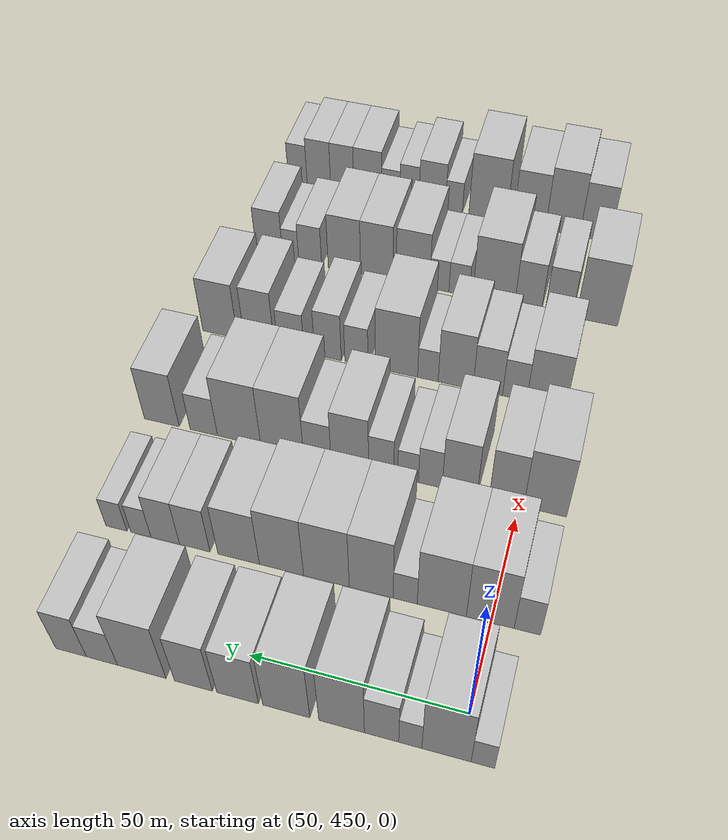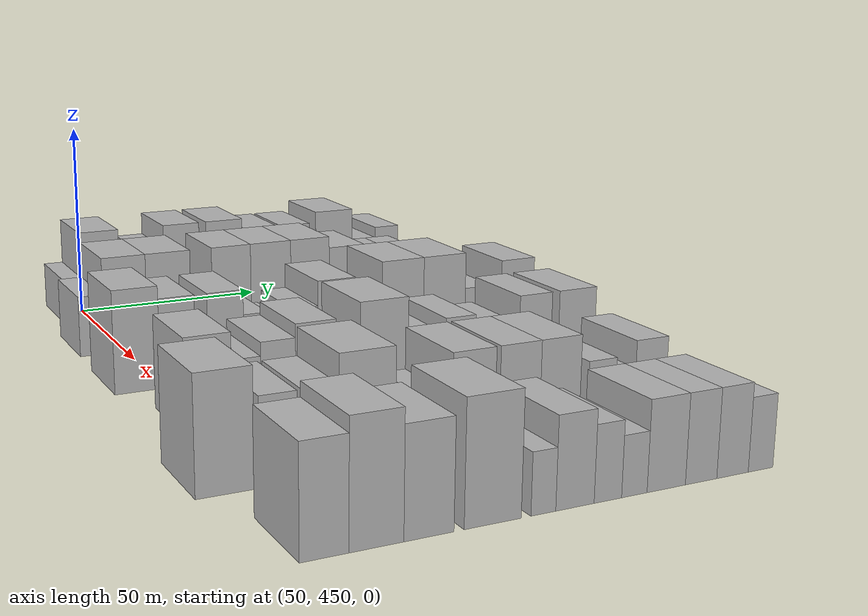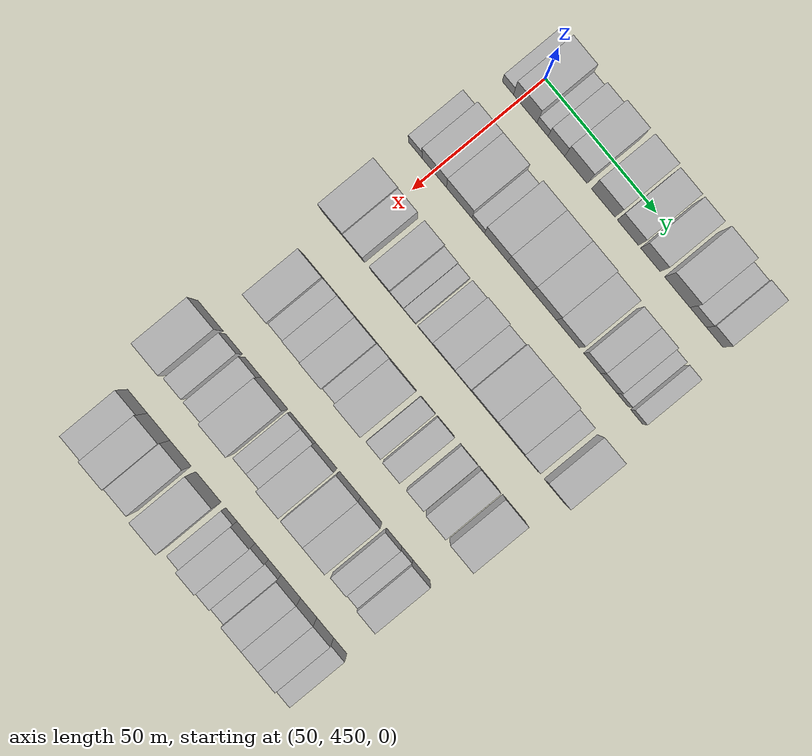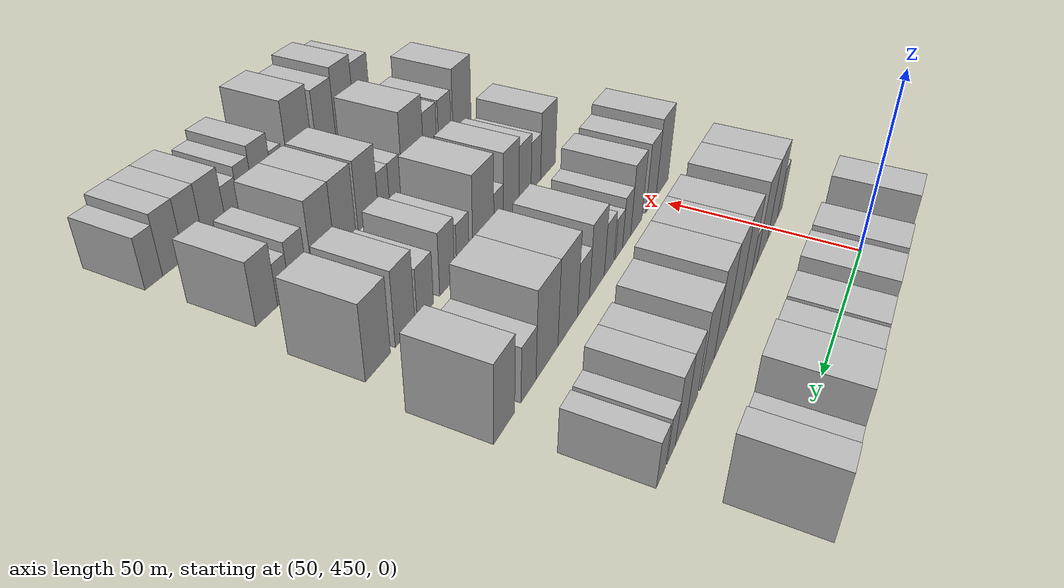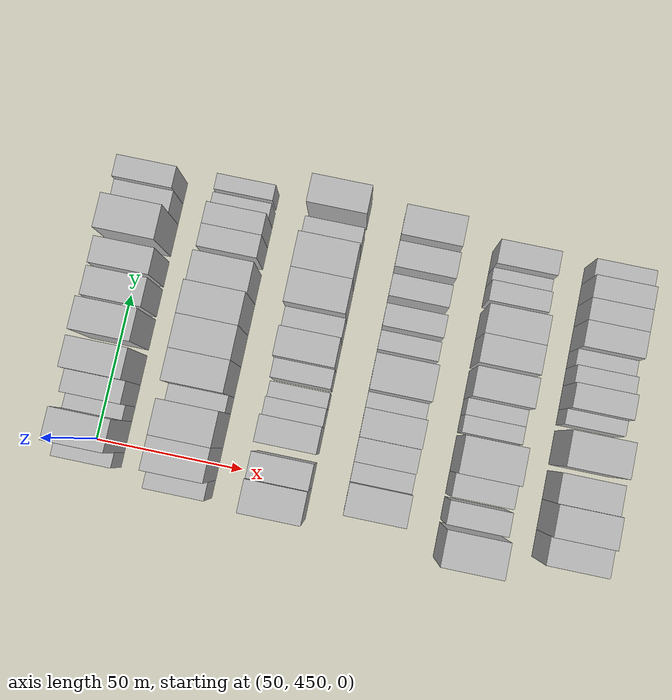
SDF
<sdf version="1.6">
 <world name="default">
  <model name="building_104">
   <static>1</static>
   <pose>50.0000 444.9965 0 0.000000 0.000000 0.000000</pose>
   <link name="link">
    <pose>0 0 6.00 0 0 0</pose>
    <collision name="collision"><geometry><box><size>20.0000 5.0309 12.0000</size></box></geometry></collision>
    <visual name="visual">
     <cast_shadows>0</cast_shadows>
     <geometry><box><size>20.0000 5.0309 12.0000</size></box></geometry>
     <material>
      <script>
       <uri>model://HANNAS_wall/materials/scripts</uri>
       <uri>model://HANNAS_wall/materials/textures</uri>
       <name>vrc/HANNAS_wall</name>
      </script>
     </material>
    </visual>
   </link>
  </model>
  <model name="building_105">
   <static>1</static>
   <pose>50.0000 452.8143 0 0.000000 0.000000 0.000000</pose>
   <link name="link">
    <pose>0 0 12.00 0 0 0</pose>
    <collision name="collision"><geometry><box><size>20.0000 10.6047 24.0000</size></box></geometry></collision>
    <visual name="visual">
     <cast_shadows>0</cast_shadows>
     <geometry><box><size>20.0000 10.6047 24.0000</size></box></geometry>
     <material>
      <script>
       <uri>model://HANNAS_wall/materials/scripts</uri>
       <uri>model://HANNAS_wall/materials/textures</uri>
       <name>vrc/HANNAS_wall</name>
      </script>
     </material>
    </visual>
   </link>
  </model>
  <model name="building_106">
   <static>1</static>
   <pose>50.0000 460.6272 0 0.000000 0.000000 0.000000</pose>
   <link name="link">
    <pose>0 0 6.00 0 0 0</pose>
    <collision name="collision"><geometry><box><size>20.0000 5.0212 12.0000</size></box></geometry></collision>
    <visual name="visual">
     <cast_shadows>0</cast_shadows>
     <geometry><box><size>20.0000 5.0212 12.0000</size></box></geometry>
     <material>
      <script>
       <uri>model://HANNAS_wall/materials/scripts</uri>
       <uri>model://HANNAS_wall/materials/textures</uri>
       <name>vrc/HANNAS_wall</name>
      </script>
     </material>
    </visual>
   </link>
  </model>
  <model name="building_107">
   <static>1</static>
   <pose>50.0000 466.9019 0 0.000000 0.000000 0.000000</pose>
   <link name="link">
    <pose>0 0 9.00 0 0 0</pose>
    <collision name="collision"><geometry><box><size>20.0000 7.5283 18.0000</size></box></geometry></collision>
    <visual name="visual">
     <cast_shadows>0</cast_shadows>
     <geometry><box><size>20.0000 7.5283 18.0000</size></box></geometry>
     <material>
      <script>
       <uri>model://HANNAS_wall/materials/scripts</uri>
       <uri>model://HANNAS_wall/materials/textures</uri>
       <name>vrc/HANNAS_wall</name>
      </script>
     </material>
    </visual>
   </link>
  </model>
  <model name="building_108">
   <static>1</static>
   <pose>50.0000 475.7332 0 0.000000 0.000000 0.000000</pose>
   <link name="link">
    <pose>0 0 12.00 0 0 0</pose>
    <collision name="collision"><geometry><box><size>20.0000 10.1344 24.0000</size></box></geometry></collision>
    <visual name="visual">
     <cast_shadows>0</cast_shadows>
     <geometry><box><size>20.0000 10.1344 24.0000</size></box></geometry>
     <material>
      <script>
       <uri>model://HANNAS_wall/materials/scripts</uri>
       <uri>model://HANNAS_wall/materials/textures</uri>
       <name>vrc/HANNAS_wall</name>
      </script>
     </material>
    </visual>
   </link>
  </model>
  <model name="building_109">
   <static>1</static>
   <pose>50.0000 488.1139 0 0.000000 0.000000 0.000000</pose>
   <link name="link">
    <pose>0 0 12.00 0 0 0</pose>
    <collision name="collision"><geometry><box><size>20.0000 10.6270 24.0000</size></box></geometry></collision>
    <visual name="visual">
     <cast_shadows>0</cast_shadows>
     <geometry><box><size>20.0000 10.6270 24.0000</size></box></geometry>
     <material>
      <script>
       <uri>model://HANNAS_wall/materials/scripts</uri>
       <uri>model://HANNAS_wall/materials/textures</uri>
       <name>vrc/HANNAS_wall</name>
      </script>
     </material>
    </visual>
   </link>
  </model>
  <model name="building_110">
   <static>1</static>
   <pose>50.0000 499.2135 0 0.000000 0.000000 0.000000</pose>
   <link name="link">
    <pose>0 0 10.50 0 0 0</pose>
    <collision name="collision"><geometry><box><size>20.0000 9.5722 21.0000</size></box></geometry></collision>
    <visual name="visual">
     <cast_shadows>0</cast_shadows>
     <geometry><box><size>20.0000 9.5722 21.0000</size></box></geometry>
     <material>
      <script>
       <uri>model://HANNAS_wall/materials/scripts</uri>
       <uri>model://HANNAS_wall/materials/textures</uri>
       <name>vrc/HANNAS_wall</name>
      </script>
     </material>
    </visual>
   </link>
  </model>
  <model name="building_111">
   <static>1</static>
   <pose>50.0000 509.4123 0 0.000000 0.000000 0.000000</pose>
   <link name="link">
    <pose>0 0 10.50 0 0 0</pose>
    <collision name="collision"><geometry><box><size>20.0000 8.8254 21.0000</size></box></geometry></collision>
    <visual name="visual">
     <cast_shadows>0</cast_shadows>
     <geometry><box><size>20.0000 8.8254 21.0000</size></box></geometry>
     <material>
      <script>
       <uri>model://HANNAS_wall/materials/scripts</uri>
       <uri>model://HANNAS_wall/materials/textures</uri>
       <name>vrc/HANNAS_wall</name>
      </script>
     </material>
    </visual>
   </link>
  </model>
  <model name="building_112">
   <static>1</static>
   <pose>50.0000 521.5541 0 0.000000 0.000000 0.000000</pose>
   <link name="link">
    <pose>0 0 12.00 0 0 0</pose>
    <collision name="collision"><geometry><box><size>20.0000 11.4580 24.0000</size></box></geometry></collision>
    <visual name="visual">
     <cast_shadows>0</cast_shadows>
     <geometry><box><size>20.0000 11.4580 24.0000</size></box></geometry>
     <material>
      <script>
       <uri>model://HANNAS_wall/materials/scripts</uri>
       <uri>model://HANNAS_wall/materials/textures</uri>
       <name>vrc/HANNAS_wall</name>
      </script>
     </material>
    </visual>
   </link>
  </model>
  <model name="building_113">
   <static>1</static>
   <pose>50.0000 531.0181 0 0.000000 0.000000 0.000000</pose>
   <link name="link">
    <pose>0 0 7.50 0 0 0</pose>
    <collision name="collision"><geometry><box><size>20.0000 7.4699 15.0000</size></box></geometry></collision>
    <visual name="visual">
     <cast_shadows>0</cast_shadows>
     <geometry><box><size>20.0000 7.4699 15.0000</size></box></geometry>
     <material>
      <script>
       <uri>model://HANNAS_wall/materials/scripts</uri>
       <uri>model://HANNAS_wall/materials/textures</uri>
       <name>vrc/HANNAS_wall</name>
      </script>
     </material>
    </visual>
   </link>
  </model>
  <model name="building_114">
   <static>1</static>
   <pose>50.0000 538.4522 0 0.000000 0.000000 0.000000</pose>
   <link name="link">
    <pose>0 0 9.00 0 0 0</pose>
    <collision name="collision"><geometry><box><size>20.0000 7.3984 18.0000</size></box></geometry></collision>
    <visual name="visual">
     <cast_shadows>0</cast_shadows>
     <geometry><box><size>20.0000 7.3984 18.0000</size></box></geometry>
     <material>
      <script>
       <uri>model://HANNAS_wall/materials/scripts</uri>
       <uri>model://HANNAS_wall/materials/textures</uri>
       <name>vrc/HANNAS_wall</name>
      </script>
     </material>
    </visual>
   </link>
  </model>
  <model name="building_224">
   <static>1</static>
   <pose>82.0000 441.7404 0 0.000000 0.000000 0.000000</pose>
   <link name="link">
    <pose>0 0 7.50 0 0 0</pose>
    <collision name="collision"><geometry><box><size>20.0000 6.0666 15.0000</size></box></geometry></collision>
    <visual name="visual">
     <cast_shadows>0</cast_shadows>
     <geometry><box><size>20.0000 6.0666 15.0000</size></box></geometry>
     <material>
      <script>
       <uri>model://HANNAS_wall/materials/scripts</uri>
       <uri>model://HANNAS_wall/materials/textures</uri>
       <name>vrc/HANNAS_wall</name>
      </script>
     </material>
    </visual>
   </link>
  </model>
  <model name="building_225">
   <static>1</static>
   <pose>82.0000 450.2878 0 0.000000 0.000000 0.000000</pose>
   <link name="link">
    <pose>0 0 12.00 0 0 0</pose>
    <collision name="collision"><geometry><box><size>20.0000 11.0281 24.0000</size></box></geometry></collision>
    <visual name="visual">
     <cast_shadows>0</cast_shadows>
     <geometry><box><size>20.0000 11.0281 24.0000</size></box></geometry>
     <material>
      <script>
       <uri>model://HANNAS_wall/materials/scripts</uri>
       <uri>model://HANNAS_wall/materials/textures</uri>
       <name>vrc/HANNAS_wall</name>
      </script>
     </material>
    </visual>
   </link>
  </model>
  <model name="building_226">
   <static>1</static>
   <pose>82.0000 461.5555 0 0.000000 0.000000 0.000000</pose>
   <link name="link">
    <pose>0 0 12.00 0 0 0</pose>
    <collision name="collision"><geometry><box><size>20.0000 11.5074 24.0000</size></box></geometry></collision>
    <visual name="visual">
     <cast_shadows>0</cast_shadows>
     <geometry><box><size>20.0000 11.5074 24.0000</size></box></geometry>
     <material>
      <script>
       <uri>model://HANNAS_wall/materials/scripts</uri>
       <uri>model://HANNAS_wall/materials/textures</uri>
       <name>vrc/HANNAS_wall</name>
      </script>
     </material>
    </visual>
   </link>
  </model>
  <model name="building_227">
   <static>1</static>
   <pose>82.0000 470.1527 0 0.000000 0.000000 0.000000</pose>
   <link name="link">
    <pose>0 0 6.00 0 0 0</pose>
    <collision name="collision"><geometry><box><size>20.0000 5.6869 12.0000</size></box></geometry></collision>
    <visual name="visual">
     <cast_shadows>0</cast_shadows>
     <geometry><box><size>20.0000 5.6869 12.0000</size></box></geometry>
     <material>
      <script>
       <uri>model://HANNAS_wall/materials/scripts</uri>
       <uri>model://HANNAS_wall/materials/textures</uri>
       <name>vrc/HANNAS_wall</name>
      </script>
     </material>
    </visual>
   </link>
  </model>
  <model name="building_228">
   <static>1</static>
   <pose>82.0000 478.2468 0 0.000000 0.000000 0.000000</pose>
   <link name="link">
    <pose>0 0 12.00 0 0 0</pose>
    <collision name="collision"><geometry><box><size>20.0000 10.5013 24.0000</size></box></geometry></collision>
    <visual name="visual">
     <cast_shadows>0</cast_shadows>
     <geometry><box><size>20.0000 10.5013 24.0000</size></box></geometry>
     <material>
      <script>
       <uri>model://HANNAS_wall/materials/scripts</uri>
       <uri>model://HANNAS_wall/materials/textures</uri>
       <name>vrc/HANNAS_wall</name>
      </script>
     </material>
    </visual>
   </link>
  </model>
  <model name="building_229">
   <static>1</static>
   <pose>82.0000 489.0395 0 0.000000 0.000000 0.000000</pose>
   <link name="link">
    <pose>0 0 12.00 0 0 0</pose>
    <collision name="collision"><geometry><box><size>20.0000 11.0842 24.0000</size></box></geometry></collision>
    <visual name="visual">
     <cast_shadows>0</cast_shadows>
     <geometry><box><size>20.0000 11.0842 24.0000</size></box></geometry>
     <material>
      <script>
       <uri>model://HANNAS_wall/materials/scripts</uri>
       <uri>model://HANNAS_wall/materials/textures</uri>
       <name>vrc/HANNAS_wall</name>
      </script>
     </material>
    </visual>
   </link>
  </model>
  <model name="building_230">
   <static>1</static>
   <pose>82.0000 500.0204 0 0.000000 0.000000 0.000000</pose>
   <link name="link">
    <pose>0 0 12.00 0 0 0</pose>
    <collision name="collision"><geometry><box><size>20.0000 10.8776 24.0000</size></box></geometry></collision>
    <visual name="visual">
     <cast_shadows>0</cast_shadows>
     <geometry><box><size>20.0000 10.8776 24.0000</size></box></geometry>
     <material>
      <script>
       <uri>model://HANNAS_wall/materials/scripts</uri>
       <uri>model://HANNAS_wall/materials/textures</uri>
       <name>vrc/HANNAS_wall</name>
      </script>
     </material>
    </visual>
   </link>
  </model>
  <model name="building_231">
   <static>1</static>
   <pose>82.0000 510.6318 0 0.000000 0.000000 0.000000</pose>
   <link name="link">
    <pose>0 0 10.50 0 0 0</pose>
    <collision name="collision"><geometry><box><size>20.0000 10.3451 21.0000</size></box></geometry></collision>
    <visual name="visual">
     <cast_shadows>0</cast_shadows>
     <geometry><box><size>20.0000 10.3451 21.0000</size></box></geometry>
     <material>
      <script>
       <uri>model://HANNAS_wall/materials/scripts</uri>
       <uri>model://HANNAS_wall/materials/textures</uri>
       <name>vrc/HANNAS_wall</name>
      </script>
     </material>
    </visual>
   </link>
  </model>
  <model name="building_232">
   <static>1</static>
   <pose>82.0000 521.6520 0 0.000000 0.000000 0.000000</pose>
   <link name="link">
    <pose>0 0 9.00 0 0 0</pose>
    <collision name="collision"><geometry><box><size>20.0000 7.6953 18.0000</size></box></geometry></collision>
    <visual name="visual">
     <cast_shadows>0</cast_shadows>
     <geometry><box><size>20.0000 7.6953 18.0000</size></box></geometry>
     <material>
      <script>
       <uri>model://HANNAS_wall/materials/scripts</uri>
       <uri>model://HANNAS_wall/materials/textures</uri>
       <name>vrc/HANNAS_wall</name>
      </script>
     </material>
    </visual>
   </link>
  </model>
  <model name="building_233">
   <static>1</static>
   <pose>82.0000 529.1618 0 0.000000 0.000000 0.000000</pose>
   <link name="link">
    <pose>0 0 9.00 0 0 0</pose>
    <collision name="collision"><geometry><box><size>20.0000 7.3242 18.0000</size></box></geometry></collision>
    <visual name="visual">
     <cast_shadows>0</cast_shadows>
     <geometry><box><size>20.0000 7.3242 18.0000</size></box></geometry>
     <material>
      <script>
       <uri>model://HANNAS_wall/materials/scripts</uri>
       <uri>model://HANNAS_wall/materials/textures</uri>
       <name>vrc/HANNAS_wall</name>
      </script>
     </material>
    </visual>
   </link>
  </model>
  <model name="building_234">
   <static>1</static>
   <pose>82.0000 535.4018 0 0.000000 0.000000 0.000000</pose>
   <link name="link">
    <pose>0 0 6.00 0 0 0</pose>
    <collision name="collision"><geometry><box><size>20.0000 5.1557 12.0000</size></box></geometry></collision>
    <visual name="visual">
     <cast_shadows>0</cast_shadows>
     <geometry><box><size>20.0000 5.1557 12.0000</size></box></geometry>
     <material>
      <script>
       <uri>model://HANNAS_wall/materials/scripts</uri>
       <uri>model://HANNAS_wall/materials/textures</uri>
       <name>vrc/HANNAS_wall</name>
      </script>
     </material>
    </visual>
   </link>
  </model>
  <model name="building_235">
   <static>1</static>
   <pose>82.0000 541.7049 0 0.000000 0.000000 0.000000</pose>
   <link name="link">
    <pose>0 0 6.00 0 0 0</pose>
    <collision name="collision"><geometry><box><size>20.0000 5.4505 12.0000</size></box></geometry></collision>
    <visual name="visual">
     <cast_shadows>0</cast_shadows>
     <geometry><box><size>20.0000 5.4505 12.0000</size></box></geometry>
     <material>
      <script>
       <uri>model://HANNAS_wall/materials/scripts</uri>
       <uri>model://HANNAS_wall/materials/textures</uri>
       <name>vrc/HANNAS_wall</name>
      </script>
     </material>
    </visual>
   </link>
  </model>
  <model name="building_340">
   <static>1</static>
   <pose>114.0000 443.5470 0 0.000000 0.000000 0.000000</pose>
   <link name="link">
    <pose>0 0 12.00 0 0 0</pose>
    <collision name="collision"><geometry><box><size>20.0000 10.5785 24.0000</size></box></geometry></collision>
    <visual name="visual">
     <cast_shadows>0</cast_shadows>
     <geometry><box><size>20.0000 10.5785 24.0000</size></box></geometry>
     <material>
      <script>
       <uri>model://HANNAS_wall/materials/scripts</uri>
       <uri>model://HANNAS_wall/materials/textures</uri>
       <name>vrc/HANNAS_wall</name>
      </script>
     </material>
    </visual>
   </link>
  </model>
  <model name="building_341">
   <static>1</static>
   <pose>114.0000 453.1126 0 0.000000 0.000000 0.000000</pose>
   <link name="link">
    <pose>0 0 10.50 0 0 0</pose>
    <collision name="collision"><geometry><box><size>20.0000 8.5527 21.0000</size></box></geometry></collision>
    <visual name="visual">
     <cast_shadows>0</cast_shadows>
     <geometry><box><size>20.0000 8.5527 21.0000</size></box></geometry>
     <material>
      <script>
       <uri>model://HANNAS_wall/materials/scripts</uri>
       <uri>model://HANNAS_wall/materials/textures</uri>
       <name>vrc/HANNAS_wall</name>
      </script>
     </material>
    </visual>
   </link>
  </model>
  <model name="building_342">
   <static>1</static>
   <pose>114.0000 464.7864 0 0.000000 0.000000 0.000000</pose>
   <link name="link">
    <pose>0 0 10.50 0 0 0</pose>
    <collision name="collision"><geometry><box><size>20.0000 8.7950 21.0000</size></box></geometry></collision>
    <visual name="visual">
     <cast_shadows>0</cast_shadows>
     <geometry><box><size>20.0000 8.7950 21.0000</size></box></geometry>
     <material>
      <script>
       <uri>model://HANNAS_wall/materials/scripts</uri>
       <uri>model://HANNAS_wall/materials/textures</uri>
       <name>vrc/HANNAS_wall</name>
      </script>
     </material>
    </visual>
   </link>
  </model>
  <model name="building_343">
   <static>1</static>
   <pose>114.0000 472.1928 0 0.000000 0.000000 0.000000</pose>
   <link name="link">
    <pose>0 0 7.50 0 0 0</pose>
    <collision name="collision"><geometry><box><size>20.0000 6.0178 15.0000</size></box></geometry></collision>
    <visual name="visual">
     <cast_shadows>0</cast_shadows>
     <geometry><box><size>20.0000 6.0178 15.0000</size></box></geometry>
     <material>
      <script>
       <uri>model://HANNAS_wall/materials/scripts</uri>
       <uri>model://HANNAS_wall/materials/textures</uri>
       <name>vrc/HANNAS_wall</name>
      </script>
     </material>
    </visual>
   </link>
  </model>
  <model name="building_344">
   <static>1</static>
   <pose>114.0000 477.8475 0 0.000000 0.000000 0.000000</pose>
   <link name="link">
    <pose>0 0 6.00 0 0 0</pose>
    <collision name="collision"><geometry><box><size>20.0000 5.2915 12.0000</size></box></geometry></collision>
    <visual name="visual">
     <cast_shadows>0</cast_shadows>
     <geometry><box><size>20.0000 5.2915 12.0000</size></box></geometry>
     <material>
      <script>
       <uri>model://HANNAS_wall/materials/scripts</uri>
       <uri>model://HANNAS_wall/materials/textures</uri>
       <name>vrc/HANNAS_wall</name>
      </script>
     </material>
    </visual>
   </link>
  </model>
  <model name="building_345">
   <static>1</static>
   <pose>114.0000 484.7353 0 0.000000 0.000000 0.000000</pose>
   <link name="link">
    <pose>0 0 7.50 0 0 0</pose>
    <collision name="collision"><geometry><box><size>20.0000 6.4841 15.0000</size></box></geometry></collision>
    <visual name="visual">
     <cast_shadows>0</cast_shadows>
     <geometry><box><size>20.0000 6.4841 15.0000</size></box></geometry>
     <material>
      <script>
       <uri>model://HANNAS_wall/materials/scripts</uri>
       <uri>model://HANNAS_wall/materials/textures</uri>
       <name>vrc/HANNAS_wall</name>
      </script>
     </material>
    </visual>
   </link>
  </model>
  <model name="building_346">
   <static>1</static>
   <pose>114.0000 492.8597 0 0.000000 0.000000 0.000000</pose>
   <link name="link">
    <pose>0 0 10.50 0 0 0</pose>
    <collision name="collision"><geometry><box><size>20.0000 9.7646 21.0000</size></box></geometry></collision>
    <visual name="visual">
     <cast_shadows>0</cast_shadows>
     <geometry><box><size>20.0000 9.7646 21.0000</size></box></geometry>
     <material>
      <script>
       <uri>model://HANNAS_wall/materials/scripts</uri>
       <uri>model://HANNAS_wall/materials/textures</uri>
       <name>vrc/HANNAS_wall</name>
      </script>
     </material>
    </visual>
   </link>
  </model>
  <model name="building_347">
   <static>1</static>
   <pose>114.0000 501.3580 0 0.000000 0.000000 0.000000</pose>
   <link name="link">
    <pose>0 0 7.50 0 0 0</pose>
    <collision name="collision"><geometry><box><size>20.0000 7.2322 15.0000</size></box></geometry></collision>
    <visual name="visual">
     <cast_shadows>0</cast_shadows>
     <geometry><box><size>20.0000 7.2322 15.0000</size></box></geometry>
     <material>
      <script>
       <uri>model://HANNAS_wall/materials/scripts</uri>
       <uri>model://HANNAS_wall/materials/textures</uri>
       <name>vrc/HANNAS_wall</name>
      </script>
     </material>
    </visual>
   </link>
  </model>
  <model name="building_348">
   <static>1</static>
   <pose>114.0000 510.6494 0 0.000000 0.000000 0.000000</pose>
   <link name="link">
    <pose>0 0 12.00 0 0 0</pose>
    <collision name="collision"><geometry><box><size>20.0000 11.3506 24.0000</size></box></geometry></collision>
    <visual name="visual">
     <cast_shadows>0</cast_shadows>
     <geometry><box><size>20.0000 11.3506 24.0000</size></box></geometry>
     <material>
      <script>
       <uri>model://HANNAS_wall/materials/scripts</uri>
       <uri>model://HANNAS_wall/materials/textures</uri>
       <name>vrc/HANNAS_wall</name>
      </script>
     </material>
    </visual>
   </link>
  </model>
  <model name="building_349">
   <static>1</static>
   <pose>114.0000 522.1672 0 0.000000 0.000000 0.000000</pose>
   <link name="link">
    <pose>0 0 12.00 0 0 0</pose>
    <collision name="collision"><geometry><box><size>20.0000 11.6849 24.0000</size></box></geometry></collision>
    <visual name="visual">
     <cast_shadows>0</cast_shadows>
     <geometry><box><size>20.0000 11.6849 24.0000</size></box></geometry>
     <material>
      <script>
       <uri>model://HANNAS_wall/materials/scripts</uri>
       <uri>model://HANNAS_wall/materials/textures</uri>
       <name>vrc/HANNAS_wall</name>
      </script>
     </material>
    </visual>
   </link>
  </model>
  <model name="building_350">
   <static>1</static>
   <pose>114.0000 531.7428 0 0.000000 0.000000 0.000000</pose>
   <link name="link">
    <pose>0 0 7.50 0 0 0</pose>
    <collision name="collision"><geometry><box><size>20.0000 7.4663 15.0000</size></box></geometry></collision>
    <visual name="visual">
     <cast_shadows>0</cast_shadows>
     <geometry><box><size>20.0000 7.4663 15.0000</size></box></geometry>
     <material>
      <script>
       <uri>model://HANNAS_wall/materials/scripts</uri>
       <uri>model://HANNAS_wall/materials/textures</uri>
       <name>vrc/HANNAS_wall</name>
      </script>
     </material>
    </visual>
   </link>
  </model>
  <model name="building_351">
   <static>1</static>
   <pose>114.0000 543.2558 0 0.000000 0.000000 0.000000</pose>
   <link name="link">
    <pose>0 0 10.50 0 0 0</pose>
    <collision name="collision"><geometry><box><size>20.0000 9.5597 21.0000</size></box></geometry></collision>
    <visual name="visual">
     <cast_shadows>0</cast_shadows>
     <geometry><box><size>20.0000 9.5597 21.0000</size></box></geometry>
     <material>
      <script>
       <uri>model://HANNAS_wall/materials/scripts</uri>
       <uri>model://HANNAS_wall/materials/textures</uri>
       <name>vrc/HANNAS_wall</name>
      </script>
     </material>
    </visual>
   </link>
  </model>
  <model name="building_449">
   <static>1</static>
   <pose>146.0000 449.0660 0 0.000000 0.000000 0.000000</pose>
   <link name="link">
    <pose>0 0 10.50 0 0 0</pose>
    <collision name="collision"><geometry><box><size>20.0000 10.3460 21.0000</size></box></geometry></collision>
    <visual name="visual">
     <cast_shadows>0</cast_shadows>
     <geometry><box><size>20.0000 10.3460 21.0000</size></box></geometry>
     <material>
      <script>
       <uri>model://HANNAS_wall/materials/scripts</uri>
       <uri>model://HANNAS_wall/materials/textures</uri>
       <name>vrc/HANNAS_wall</name>
      </script>
     </material>
    </visual>
   </link>
  </model>
  <model name="building_450">
   <static>1</static>
   <pose>146.0000 457.4619 0 0.000000 0.000000 0.000000</pose>
   <link name="link">
    <pose>0 0 7.50 0 0 0</pose>
    <collision name="collision"><geometry><box><size>20.0000 6.4459 15.0000</size></box></geometry></collision>
    <visual name="visual">
     <cast_shadows>0</cast_shadows>
     <geometry><box><size>20.0000 6.4459 15.0000</size></box></geometry>
     <material>
      <script>
       <uri>model://HANNAS_wall/materials/scripts</uri>
       <uri>model://HANNAS_wall/materials/textures</uri>
       <name>vrc/HANNAS_wall</name>
      </script>
     </material>
    </visual>
   </link>
  </model>
  <model name="building_451">
   <static>1</static>
   <pose>146.0000 464.6374 0 0.000000 0.000000 0.000000</pose>
   <link name="link">
    <pose>0 0 9.00 0 0 0</pose>
    <collision name="collision"><geometry><box><size>20.0000 7.9051 18.0000</size></box></geometry></collision>
    <visual name="visual">
     <cast_shadows>0</cast_shadows>
     <geometry><box><size>20.0000 7.9051 18.0000</size></box></geometry>
     <material>
      <script>
       <uri>model://HANNAS_wall/materials/scripts</uri>
       <uri>model://HANNAS_wall/materials/textures</uri>
       <name>vrc/HANNAS_wall</name>
      </script>
     </material>
    </visual>
   </link>
  </model>
  <model name="building_452">
   <static>1</static>
   <pose>146.0000 473.2822 0 0.000000 0.000000 0.000000</pose>
   <link name="link">
    <pose>0 0 10.50 0 0 0</pose>
    <collision name="collision"><geometry><box><size>20.0000 9.3845 21.0000</size></box></geometry></collision>
    <visual name="visual">
     <cast_shadows>0</cast_shadows>
     <geometry><box><size>20.0000 9.3845 21.0000</size></box></geometry>
     <material>
      <script>
       <uri>model://HANNAS_wall/materials/scripts</uri>
       <uri>model://HANNAS_wall/materials/textures</uri>
       <name>vrc/HANNAS_wall</name>
      </script>
     </material>
    </visual>
   </link>
  </model>
  <model name="building_453">
   <static>1</static>
   <pose>146.0000 480.7875 0 0.000000 0.000000 0.000000</pose>
   <link name="link">
    <pose>0 0 6.00 0 0 0</pose>
    <collision name="collision"><geometry><box><size>20.0000 5.6261 12.0000</size></box></geometry></collision>
    <visual name="visual">
     <cast_shadows>0</cast_shadows>
     <geometry><box><size>20.0000 5.6261 12.0000</size></box></geometry>
     <material>
      <script>
       <uri>model://HANNAS_wall/materials/scripts</uri>
       <uri>model://HANNAS_wall/materials/textures</uri>
       <name>vrc/HANNAS_wall</name>
      </script>
     </material>
    </visual>
   </link>
  </model>
  <model name="building_454">
   <static>1</static>
   <pose>146.0000 489.4441 0 0.000000 0.000000 0.000000</pose>
   <link name="link">
    <pose>0 0 12.00 0 0 0</pose>
    <collision name="collision"><geometry><box><size>20.0000 11.6869 24.0000</size></box></geometry></collision>
    <visual name="visual">
     <cast_shadows>0</cast_shadows>
     <geometry><box><size>20.0000 11.6869 24.0000</size></box></geometry>
     <material>
      <script>
       <uri>model://HANNAS_wall/materials/scripts</uri>
       <uri>model://HANNAS_wall/materials/textures</uri>
       <name>vrc/HANNAS_wall</name>
      </script>
     </material>
    </visual>
   </link>
  </model>
  <model name="building_455">
   <static>1</static>
   <pose>146.0000 500.5053 0 0.000000 0.000000 0.000000</pose>
   <link name="link">
    <pose>0 0 7.50 0 0 0</pose>
    <collision name="collision"><geometry><box><size>20.0000 6.4356 15.0000</size></box></geometry></collision>
    <visual name="visual">
     <cast_shadows>0</cast_shadows>
     <geometry><box><size>20.0000 6.4356 15.0000</size></box></geometry>
     <material>
      <script>
       <uri>model://HANNAS_wall/materials/scripts</uri>
       <uri>model://HANNAS_wall/materials/textures</uri>
       <name>vrc/HANNAS_wall</name>
      </script>
     </material>
    </visual>
   </link>
  </model>
  <model name="building_456">
   <static>1</static>
   <pose>146.0000 508.4625 0 0.000000 0.000000 0.000000</pose>
   <link name="link">
    <pose>0 0 9.00 0 0 0</pose>
    <collision name="collision"><geometry><box><size>20.0000 7.4787 18.0000</size></box></geometry></collision>
    <visual name="visual">
     <cast_shadows>0</cast_shadows>
     <geometry><box><size>20.0000 7.4787 18.0000</size></box></geometry>
     <material>
      <script>
       <uri>model://HANNAS_wall/materials/scripts</uri>
       <uri>model://HANNAS_wall/materials/textures</uri>
       <name>vrc/HANNAS_wall</name>
      </script>
     </material>
    </visual>
   </link>
  </model>
  <model name="building_457">
   <static>1</static>
   <pose>146.0000 518.9450 0 0.000000 0.000000 0.000000</pose>
   <link name="link">
    <pose>0 0 7.50 0 0 0</pose>
    <collision name="collision"><geometry><box><size>20.0000 7.4863 15.0000</size></box></geometry></collision>
    <visual name="visual">
     <cast_shadows>0</cast_shadows>
     <geometry><box><size>20.0000 7.4863 15.0000</size></box></geometry>
     <material>
      <script>
       <uri>model://HANNAS_wall/materials/scripts</uri>
       <uri>model://HANNAS_wall/materials/textures</uri>
       <name>vrc/HANNAS_wall</name>
      </script>
     </material>
    </visual>
   </link>
  </model>
  <model name="building_458">
   <static>1</static>
   <pose>146.0000 527.9827 0 0.000000 0.000000 0.000000</pose>
   <link name="link">
    <pose>0 0 10.50 0 0 0</pose>
    <collision name="collision"><geometry><box><size>20.0000 8.5893 21.0000</size></box></geometry></collision>
    <visual name="visual">
     <cast_shadows>0</cast_shadows>
     <geometry><box><size>20.0000 8.5893 21.0000</size></box></geometry>
     <material>
      <script>
       <uri>model://HANNAS_wall/materials/scripts</uri>
       <uri>model://HANNAS_wall/materials/textures</uri>
       <name>vrc/HANNAS_wall</name>
      </script>
     </material>
    </visual>
   </link>
  </model>
  <model name="building_459">
   <static>1</static>
   <pose>146.0000 539.3162 0 0.000000 0.000000 0.000000</pose>
   <link name="link">
    <pose>0 0 10.50 0 0 0</pose>
    <collision name="collision"><geometry><box><size>20.0000 10.0777 21.0000</size></box></geometry></collision>
    <visual name="visual">
     <cast_shadows>0</cast_shadows>
     <geometry><box><size>20.0000 10.0777 21.0000</size></box></geometry>
     <material>
      <script>
       <uri>model://HANNAS_wall/materials/scripts</uri>
       <uri>model://HANNAS_wall/materials/textures</uri>
       <name>vrc/HANNAS_wall</name>
      </script>
     </material>
    </visual>
   </link>
  </model>
  <model name="building_574">
   <static>1</static>
   <pose>178.0000 440.7787 0 0.000000 0.000000 0.000000</pose>
   <link name="link">
    <pose>0 0 12.00 0 0 0</pose>
    <collision name="collision"><geometry><box><size>20.0000 11.5380 24.0000</size></box></geometry></collision>
    <visual name="visual">
     <cast_shadows>0</cast_shadows>
     <geometry><box><size>20.0000 11.5380 24.0000</size></box></geometry>
     <material>
      <script>
       <uri>model://HANNAS_wall/materials/scripts</uri>
       <uri>model://HANNAS_wall/materials/textures</uri>
       <name>vrc/HANNAS_wall</name>
      </script>
     </material>
    </visual>
   </link>
  </model>
  <model name="building_575">
   <static>1</static>
   <pose>178.0000 451.3759 0 0.000000 0.000000 0.000000</pose>
   <link name="link">
    <pose>0 0 9.00 0 0 0</pose>
    <collision name="collision"><geometry><box><size>20.0000 7.6566 18.0000</size></box></geometry></collision>
    <visual name="visual">
     <cast_shadows>0</cast_shadows>
     <geometry><box><size>20.0000 7.6566 18.0000</size></box></geometry>
     <material>
      <script>
       <uri>model://HANNAS_wall/materials/scripts</uri>
       <uri>model://HANNAS_wall/materials/textures</uri>
       <name>vrc/HANNAS_wall</name>
      </script>
     </material>
    </visual>
   </link>
  </model>
  <model name="building_576">
   <static>1</static>
   <pose>178.0000 460.0198 0 0.000000 0.000000 0.000000</pose>
   <link name="link">
    <pose>0 0 9.00 0 0 0</pose>
    <collision name="collision"><geometry><box><size>20.0000 7.6311 18.0000</size></box></geometry></collision>
    <visual name="visual">
     <cast_shadows>0</cast_shadows>
     <geometry><box><size>20.0000 7.6311 18.0000</size></box></geometry>
     <material>
      <script>
       <uri>model://HANNAS_wall/materials/scripts</uri>
       <uri>model://HANNAS_wall/materials/textures</uri>
       <name>vrc/HANNAS_wall</name>
      </script>
     </material>
    </visual>
   </link>
  </model>
  <model name="building_577">
   <static>1</static>
   <pose>178.0000 469.8260 0 0.000000 0.000000 0.000000</pose>
   <link name="link">
    <pose>0 0 12.00 0 0 0</pose>
    <collision name="collision"><geometry><box><size>20.0000 11.9813 24.0000</size></box></geometry></collision>
    <visual name="visual">
     <cast_shadows>0</cast_shadows>
     <geometry><box><size>20.0000 11.9813 24.0000</size></box></geometry>
     <material>
      <script>
       <uri>model://HANNAS_wall/materials/scripts</uri>
       <uri>model://HANNAS_wall/materials/textures</uri>
       <name>vrc/HANNAS_wall</name>
      </script>
     </material>
    </visual>
   </link>
  </model>
  <model name="building_578">
   <static>1</static>
   <pose>178.0000 479.7552 0 0.000000 0.000000 0.000000</pose>
   <link name="link">
    <pose>0 0 6.00 0 0 0</pose>
    <collision name="collision"><geometry><box><size>20.0000 5.8770 12.0000</size></box></geometry></collision>
    <visual name="visual">
     <cast_shadows>0</cast_shadows>
     <geometry><box><size>20.0000 5.8770 12.0000</size></box></geometry>
     <material>
      <script>
       <uri>model://HANNAS_wall/materials/scripts</uri>
       <uri>model://HANNAS_wall/materials/textures</uri>
       <name>vrc/HANNAS_wall</name>
      </script>
     </material>
    </visual>
   </link>
  </model>
  <model name="building_579">
   <static>1</static>
   <pose>178.0000 485.4727 0 0.000000 0.000000 0.000000</pose>
   <link name="link">
    <pose>0 0 6.00 0 0 0</pose>
    <collision name="collision"><geometry><box><size>20.0000 5.5581 12.0000</size></box></geometry></collision>
    <visual name="visual">
     <cast_shadows>0</cast_shadows>
     <geometry><box><size>20.0000 5.5581 12.0000</size></box></geometry>
     <material>
      <script>
       <uri>model://HANNAS_wall/materials/scripts</uri>
       <uri>model://HANNAS_wall/materials/textures</uri>
       <name>vrc/HANNAS_wall</name>
      </script>
     </material>
    </visual>
   </link>
  </model>
  <model name="building_580">
   <static>1</static>
   <pose>178.0000 493.1603 0 0.000000 0.000000 0.000000</pose>
   <link name="link">
    <pose>0 0 10.50 0 0 0</pose>
    <collision name="collision"><geometry><box><size>20.0000 9.8171 21.0000</size></box></geometry></collision>
    <visual name="visual">
     <cast_shadows>0</cast_shadows>
     <geometry><box><size>20.0000 9.8171 21.0000</size></box></geometry>
     <material>
      <script>
       <uri>model://HANNAS_wall/materials/scripts</uri>
       <uri>model://HANNAS_wall/materials/textures</uri>
       <name>vrc/HANNAS_wall</name>
      </script>
     </material>
    </visual>
   </link>
  </model>
  <model name="building_581">
   <static>1</static>
   <pose>178.0000 503.8461 0 0.000000 0.000000 0.000000</pose>
   <link name="link">
    <pose>0 0 10.50 0 0 0</pose>
    <collision name="collision"><geometry><box><size>20.0000 9.5545 21.0000</size></box></geometry></collision>
    <visual name="visual">
     <cast_shadows>0</cast_shadows>
     <geometry><box><size>20.0000 9.5545 21.0000</size></box></geometry>
     <material>
      <script>
       <uri>model://HANNAS_wall/materials/scripts</uri>
       <uri>model://HANNAS_wall/materials/textures</uri>
       <name>vrc/HANNAS_wall</name>
      </script>
     </material>
    </visual>
   </link>
  </model>
  <model name="building_582">
   <static>1</static>
   <pose>178.0000 513.4506 0 0.000000 0.000000 0.000000</pose>
   <link name="link">
    <pose>0 0 10.50 0 0 0</pose>
    <collision name="collision"><geometry><box><size>20.0000 9.6545 21.0000</size></box></geometry></collision>
    <visual name="visual">
     <cast_shadows>0</cast_shadows>
     <geometry><box><size>20.0000 9.6545 21.0000</size></box></geometry>
     <material>
      <script>
       <uri>model://HANNAS_wall/materials/scripts</uri>
       <uri>model://HANNAS_wall/materials/textures</uri>
       <name>vrc/HANNAS_wall</name>
      </script>
     </material>
    </visual>
   </link>
  </model>
  <model name="building_583">
   <static>1</static>
   <pose>178.0000 523.7234 0 0.000000 0.000000 0.000000</pose>
   <link name="link">
    <pose>0 0 7.50 0 0 0</pose>
    <collision name="collision"><geometry><box><size>20.0000 6.8912 15.0000</size></box></geometry></collision>
    <visual name="visual">
     <cast_shadows>0</cast_shadows>
     <geometry><box><size>20.0000 6.8912 15.0000</size></box></geometry>
     <material>
      <script>
       <uri>model://HANNAS_wall/materials/scripts</uri>
       <uri>model://HANNAS_wall/materials/textures</uri>
       <name>vrc/HANNAS_wall</name>
      </script>
     </material>
    </visual>
   </link>
  </model>
  <model name="building_584">
   <static>1</static>
   <pose>178.0000 529.5918 0 0.000000 0.000000 0.000000</pose>
   <link name="link">
    <pose>0 0 6.00 0 0 0</pose>
    <collision name="collision"><geometry><box><size>20.0000 4.8455 12.0000</size></box></geometry></collision>
    <visual name="visual">
     <cast_shadows>0</cast_shadows>
     <geometry><box><size>20.0000 4.8455 12.0000</size></box></geometry>
     <material>
      <script>
       <uri>model://HANNAS_wall/materials/scripts</uri>
       <uri>model://HANNAS_wall/materials/textures</uri>
       <name>vrc/HANNAS_wall</name>
      </script>
     </material>
    </visual>
   </link>
  </model>
  <model name="building_585">
   <static>1</static>
   <pose>178.0000 536.0623 0 0.000000 0.000000 0.000000</pose>
   <link name="link">
    <pose>0 0 9.00 0 0 0</pose>
    <collision name="collision"><geometry><box><size>20.0000 8.0954 18.0000</size></box></geometry></collision>
    <visual name="visual">
     <cast_shadows>0</cast_shadows>
     <geometry><box><size>20.0000 8.0954 18.0000</size></box></geometry>
     <material>
      <script>
       <uri>model://HANNAS_wall/materials/scripts</uri>
       <uri>model://HANNAS_wall/materials/textures</uri>
       <name>vrc/HANNAS_wall</name>
      </script>
     </material>
    </visual>
   </link>
  </model>
  <model name="building_688">
   <static>1</static>
   <pose>210.0000 446.2753 0 0.000000 0.000000 0.000000</pose>
   <link name="link">
    <pose>0 0 10.50 0 0 0</pose>
    <collision name="collision"><geometry><box><size>20.0000 8.9794 21.0000</size></box></geometry></collision>
    <visual name="visual">
     <cast_shadows>0</cast_shadows>
     <geometry><box><size>20.0000 8.9794 21.0000</size></box></geometry>
     <material>
      <script>
       <uri>model://HANNAS_wall/materials/scripts</uri>
       <uri>model://HANNAS_wall/materials/textures</uri>
       <name>vrc/HANNAS_wall</name>
      </script>
     </material>
    </visual>
   </link>
  </model>
  <model name="building_689">
   <static>1</static>
   <pose>210.0000 455.8672 0 0.000000 0.000000 0.000000</pose>
   <link name="link">
    <pose>0 0 12.00 0 0 0</pose>
    <collision name="collision"><geometry><box><size>20.0000 10.2045 24.0000</size></box></geometry></collision>
    <visual name="visual">
     <cast_shadows>0</cast_shadows>
     <geometry><box><size>20.0000 10.2045 24.0000</size></box></geometry>
     <material>
      <script>
       <uri>model://HANNAS_wall/materials/scripts</uri>
       <uri>model://HANNAS_wall/materials/textures</uri>
       <name>vrc/HANNAS_wall</name>
      </script>
     </material>
    </visual>
   </link>
  </model>
  <model name="building_690">
   <static>1</static>
   <pose>210.0000 465.8092 0 0.000000 0.000000 0.000000</pose>
   <link name="link">
    <pose>0 0 10.50 0 0 0</pose>
    <collision name="collision"><geometry><box><size>20.0000 9.6794 21.0000</size></box></geometry></collision>
    <visual name="visual">
     <cast_shadows>0</cast_shadows>
     <geometry><box><size>20.0000 9.6794 21.0000</size></box></geometry>
     <material>
      <script>
       <uri>model://HANNAS_wall/materials/scripts</uri>
       <uri>model://HANNAS_wall/materials/textures</uri>
       <name>vrc/HANNAS_wall</name>
      </script>
     </material>
    </visual>
   </link>
  </model>
  <model name="building_691">
   <static>1</static>
   <pose>210.0000 478.4051 0 0.000000 0.000000 0.000000</pose>
   <link name="link">
    <pose>0 0 12.00 0 0 0</pose>
    <collision name="collision"><geometry><box><size>20.0000 11.5124 24.0000</size></box></geometry></collision>
    <visual name="visual">
     <cast_shadows>0</cast_shadows>
     <geometry><box><size>20.0000 11.5124 24.0000</size></box></geometry>
     <material>
      <script>
       <uri>model://HANNAS_wall/materials/scripts</uri>
       <uri>model://HANNAS_wall/materials/textures</uri>
       <name>vrc/HANNAS_wall</name>
      </script>
     </material>
    </visual>
   </link>
  </model>
  <model name="building_692">
   <static>1</static>
   <pose>210.0000 488.7552 0 0.000000 0.000000 0.000000</pose>
   <link name="link">
    <pose>0 0 6.00 0 0 0</pose>
    <collision name="collision"><geometry><box><size>20.0000 5.1878 12.0000</size></box></geometry></collision>
    <visual name="visual">
     <cast_shadows>0</cast_shadows>
     <geometry><box><size>20.0000 5.1878 12.0000</size></box></geometry>
     <material>
      <script>
       <uri>model://HANNAS_wall/materials/scripts</uri>
       <uri>model://HANNAS_wall/materials/textures</uri>
       <name>vrc/HANNAS_wall</name>
      </script>
     </material>
    </visual>
   </link>
  </model>
  <model name="building_693">
   <static>1</static>
   <pose>210.0000 495.4527 0 0.000000 0.000000 0.000000</pose>
   <link name="link">
    <pose>0 0 9.00 0 0 0</pose>
    <collision name="collision"><geometry><box><size>20.0000 8.2072 18.0000</size></box></geometry></collision>
    <visual name="visual">
     <cast_shadows>0</cast_shadows>
     <geometry><box><size>20.0000 8.2072 18.0000</size></box></geometry>
     <material>
      <script>
       <uri>model://HANNAS_wall/materials/scripts</uri>
       <uri>model://HANNAS_wall/materials/textures</uri>
       <name>vrc/HANNAS_wall</name>
      </script>
     </material>
    </visual>
   </link>
  </model>
  <model name="building_694">
   <static>1</static>
   <pose>210.0000 502.5649 0 0.000000 0.000000 0.000000</pose>
   <link name="link">
    <pose>0 0 7.50 0 0 0</pose>
    <collision name="collision"><geometry><box><size>20.0000 6.0171 15.0000</size></box></geometry></collision>
    <visual name="visual">
     <cast_shadows>0</cast_shadows>
     <geometry><box><size>20.0000 6.0171 15.0000</size></box></geometry>
     <material>
      <script>
       <uri>model://HANNAS_wall/materials/scripts</uri>
       <uri>model://HANNAS_wall/materials/textures</uri>
       <name>vrc/HANNAS_wall</name>
      </script>
     </material>
    </visual>
   </link>
  </model>
  <model name="building_695">
   <static>1</static>
   <pose>210.0000 508.4196 0 0.000000 0.000000 0.000000</pose>
   <link name="link">
    <pose>0 0 6.00 0 0 0</pose>
    <collision name="collision"><geometry><box><size>20.0000 5.6923 12.0000</size></box></geometry></collision>
    <visual name="visual">
     <cast_shadows>0</cast_shadows>
     <geometry><box><size>20.0000 5.6923 12.0000</size></box></geometry>
     <material>
      <script>
       <uri>model://HANNAS_wall/materials/scripts</uri>
       <uri>model://HANNAS_wall/materials/textures</uri>
       <name>vrc/HANNAS_wall</name>
      </script>
     </material>
    </visual>
   </link>
  </model>
  <model name="building_696">
   <static>1</static>
   <pose>210.0000 515.6471 0 0.000000 0.000000 0.000000</pose>
   <link name="link">
    <pose>0 0 9.00 0 0 0</pose>
    <collision name="collision"><geometry><box><size>20.0000 8.7629 18.0000</size></box></geometry></collision>
    <visual name="visual">
     <cast_shadows>0</cast_shadows>
     <geometry><box><size>20.0000 8.7629 18.0000</size></box></geometry>
     <material>
      <script>
       <uri>model://HANNAS_wall/materials/scripts</uri>
       <uri>model://HANNAS_wall/materials/textures</uri>
       <name>vrc/HANNAS_wall</name>
      </script>
     </material>
    </visual>
   </link>
  </model>
  <model name="building_697">
   <static>1</static>
   <pose>210.0000 523.7124 0 0.000000 0.000000 0.000000</pose>
   <link name="link">
    <pose>0 0 9.00 0 0 0</pose>
    <collision name="collision"><geometry><box><size>20.0000 7.3677 18.0000</size></box></geometry></collision>
    <visual name="visual">
     <cast_shadows>0</cast_shadows>
     <geometry><box><size>20.0000 7.3677 18.0000</size></box></geometry>
     <material>
      <script>
       <uri>model://HANNAS_wall/materials/scripts</uri>
       <uri>model://HANNAS_wall/materials/textures</uri>
       <name>vrc/HANNAS_wall</name>
      </script>
     </material>
    </visual>
   </link>
  </model>
  <model name="building_698">
   <static>1</static>
   <pose>210.0000 531.1749 0 0.000000 0.000000 0.000000</pose>
   <link name="link">
    <pose>0 0 9.00 0 0 0</pose>
    <collision name="collision"><geometry><box><size>20.0000 7.5572 18.0000</size></box></geometry></collision>
    <visual name="visual">
     <cast_shadows>0</cast_shadows>
     <geometry><box><size>20.0000 7.5572 18.0000</size></box></geometry>
     <material>
      <script>
       <uri>model://HANNAS_wall/materials/scripts</uri>
       <uri>model://HANNAS_wall/materials/textures</uri>
       <name>vrc/HANNAS_wall</name>
      </script>
     </material>
    </visual>
   </link>
  </model>
  <model name="building_699">
   <static>1</static>
   <pose>210.0000 537.9742 0 0.000000 0.000000 0.000000</pose>
   <link name="link">
    <pose>0 0 7.50 0 0 0</pose>
    <collision name="collision"><geometry><box><size>20.0000 6.0414 15.0000</size></box></geometry></collision>
    <visual name="visual">
     <cast_shadows>0</cast_shadows>
     <geometry><box><size>20.0000 6.0414 15.0000</size></box></geometry>
     <material>
      <script>
       <uri>model://HANNAS_wall/materials/scripts</uri>
       <uri>model://HANNAS_wall/materials/textures</uri>
       <name>vrc/HANNAS_wall</name>
      </script>
     </material>
    </visual>
   </link>
  </model>
 </world>
</sdf>
